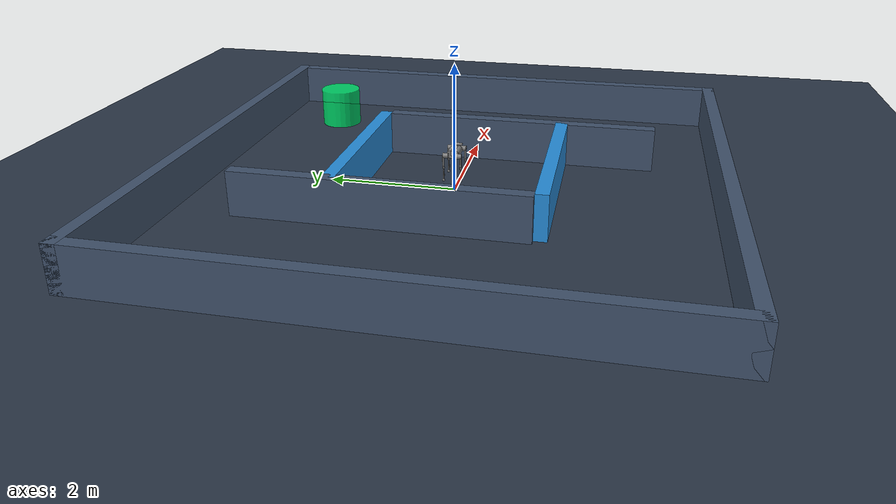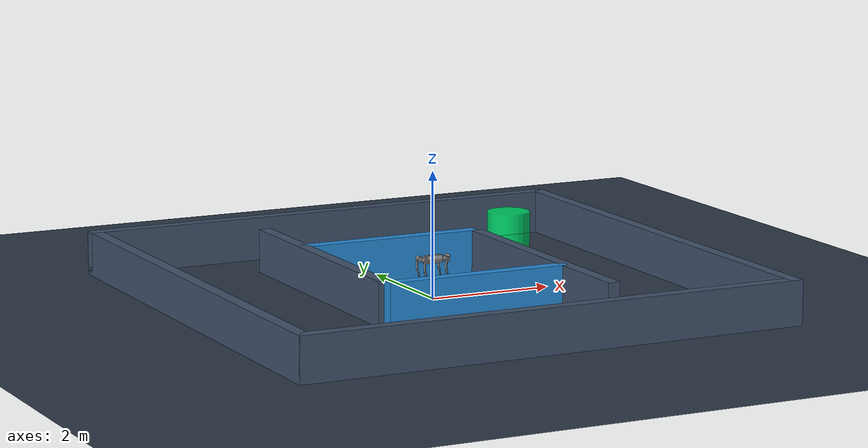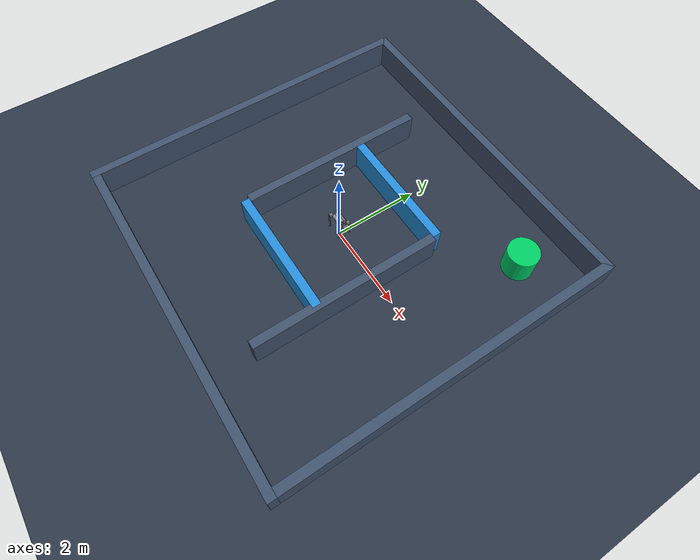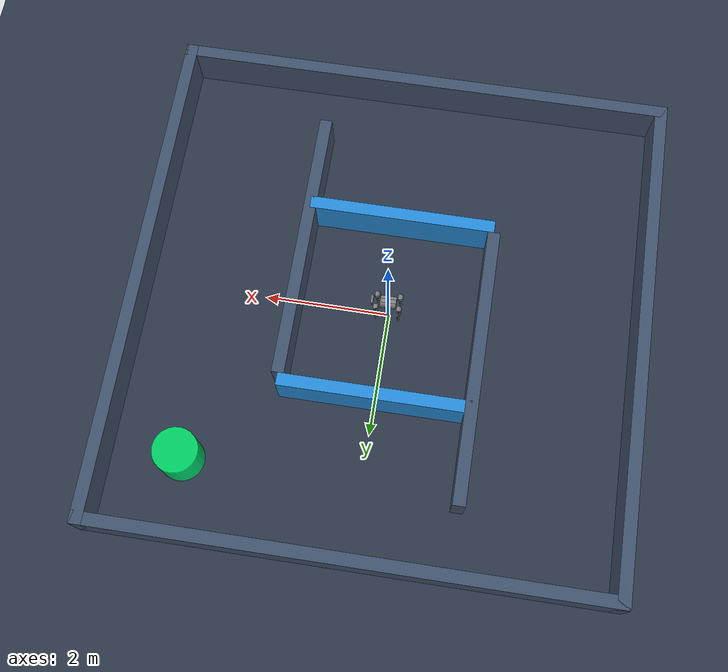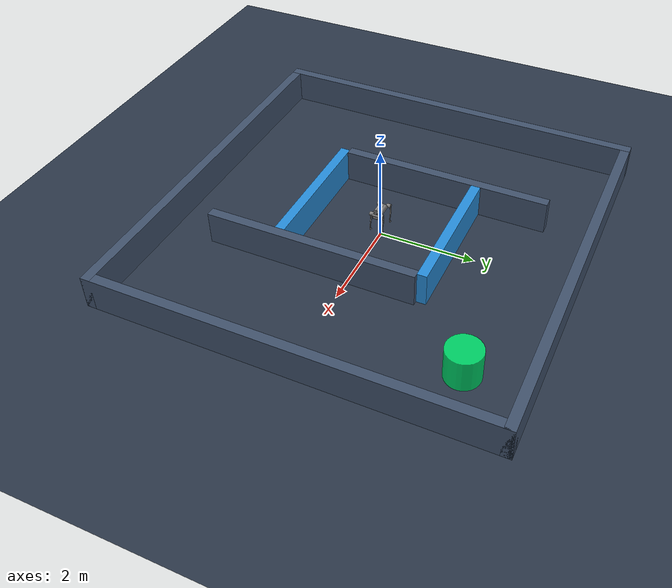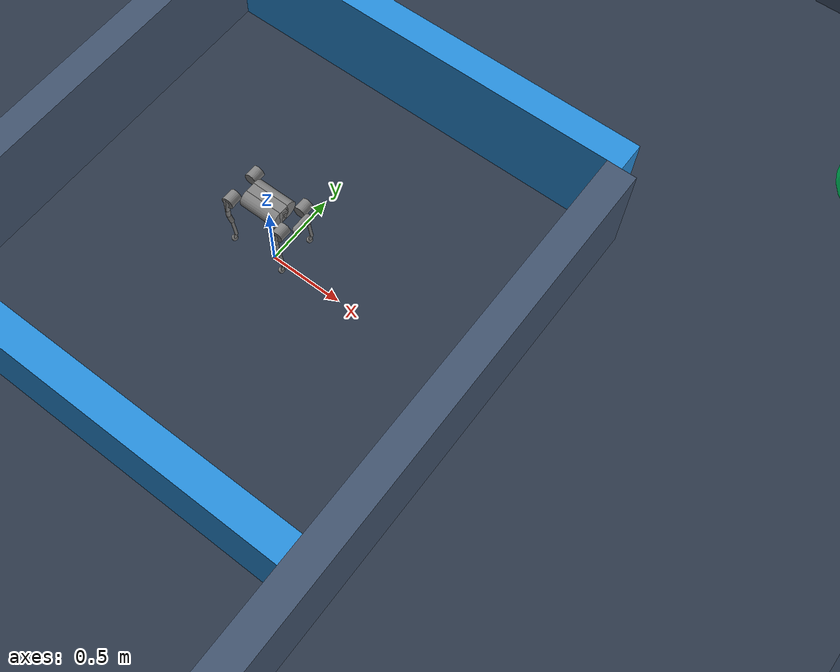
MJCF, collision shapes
<mujoco model="a1 complex maze scene">
  <include file="a1.xml"/>

  <visual>
    <headlight diffuse="0.85 0.85 0.85" ambient="0.35 0.35 0.35" specular="0.2 0.2 0.2"/>
    <rgba haze="0.10 0.18 0.28 1"/>
    <global azimuth="140" elevation="-32" offwidth="1280" offheight="720"/>
  </visual>

  <asset>
    <texture type="skybox" builtin="gradient" rgb1="0.25 0.45 0.65" rgb2="0.05 0.08 0.12" width="512" height="3072"/>
    <texture type="2d" name="groundplane" builtin="checker" mark="edge" rgb1="0.20 0.25 0.32" rgb2="0.14 0.18 0.24"
      markrgb="0.4 0.6 0.8" width="300" height="300"/>
    <material name="groundplane" texture="groundplane" texuniform="true" texrepeat="8 8" reflectance="0.15"/>

    <material name="wall_mat" rgba="0.25 0.32 0.42 1.0" specular="0.2" shininess="0.3"/>
    <material name="wall_accent" rgba="0.15 0.55 0.85 1.0" specular="0.4" shininess="0.5"/>
    <material name="goal_mat" rgba="0.0 0.95 0.45 0.85" specular="0.6" shininess="0.8"/>
  </asset>

  <worldbody>
    <light pos="0 0 5.0" dir="0 0 -1" directional="true" diffuse="0.9 0.9 0.9" specular="0.2 0.2 0.2"/>
    <light pos="-2.5 -2.5 4.0" dir="1 1 -1" directional="false" diffuse="0.5 0.5 0.6"/>
    <light pos="2.5 2.5 4.0" dir="-1 -1 -1" directional="false" diffuse="0.5 0.5 0.6"/>

    <!-- Clear, Elevated 3D Isometric Follow Camera (High above walls to prevent occlusion) -->
    <camera name="follow_cam" mode="trackcom" pos="-1.5 -1.5 2.5" xyaxes="0.707 -0.707 0 0.408 0.408 0.816"/>
    <!-- Top-Down Overview Map Camera -->
    <camera name="overview_cam" pos="0 0 9.0" xyaxes="1 0 0 0 1 0"/>

    <geom name="floor" size="0 0 0.05" type="plane" material="groundplane"/>

    <!-- Complex Hard Labyrinth Bounding Box (8m x 8m) -->
    <!-- North Wall -->
    <geom name="wall_n" type="box" pos="0 4.0 0.35" size="4.1 0.1 0.35" material="wall_mat"/>
    <!-- South Wall -->
    <geom name="wall_s" type="box" pos="0 -4.0 0.35" size="4.1 0.1 0.35" material="wall_mat"/>
    <!-- East Wall -->
    <geom name="wall_e" type="box" pos="4.0 0 0.35" size="0.1 4.1 0.35" material="wall_mat"/>
    <!-- West Wall -->
    <geom name="wall_w" type="box" pos="-4.0 0 0.35" size="0.1 4.1 0.35" material="wall_mat"/>

    <!-- Complex Hard Multi-Room Inner Dividers & U-Turn Chokepoints -->
    <!-- Divider 1: Left Corridor Divider -->
    <geom name="wall_div_1" type="box" pos="-1.5 0.8 0.35" size="0.1 2.2 0.35" material="wall_mat"/>
    <!-- Divider 2: Right Corridor Divider -->
    <geom name="wall_div_2" type="box" pos="1.5 -0.8 0.35" size="0.1 2.2 0.35" material="wall_mat"/>
    <!-- Divider 3: Bottom Horizontal Baffle (Chokepoint) -->
    <geom name="wall_div_3" type="box" pos="0.0 -1.5 0.35" size="1.5 0.1 0.35" material="wall_accent"/>
    <!-- Divider 4: Top Horizontal Baffle (Chokepoint) -->
    <geom name="wall_div_4" type="box" pos="0.0 1.5 0.35" size="1.5 0.1 0.35" material="wall_accent"/>

    <!-- Goal Beacon Marker -->
    <site name="goal_site" pos="2.8 2.8 0.3" size="0.35 0.35" type="cylinder" material="goal_mat"/>
  </worldbody>
</mujoco>

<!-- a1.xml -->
<mujoco model="a1">
  <compiler angle="radian" meshdir="assets" texturedir="assets" autolimits="true"/>

  <option cone="elliptic" impratio="100"/>

  <default>
    <default class="a1">
      <geom friction="0.6" margin="0.001"/>
      <joint axis="0 1 0" damping="2" armature="0.01" frictionloss="0.2"/>
      <position kp="100" forcerange="-33.5 33.5"/>
      <default class="abduction">
        <joint axis="1 0 0" damping="1" range="-0.802851 0.802851"/>
        <position ctrlrange="-0.802851 0.802851"/>
      </default>
      <default class="hip">
        <joint range="-1.0472 4.18879"/>
        <position ctrlrange="-1.0472 4.18879"/>
      </default>
      <default class="knee">
        <joint range="-2.69653 -0.916298"/>
        <position ctrlrange="-2.69653 -0.916298"/>
      </default>
      <default class="visual">
        <geom type="mesh" contype="0" conaffinity="0" group="2" material="dark"/>
      </default>

      <default class="foot_visual">
        <geom type="sphere" size="0.025" rgba="1 0 0 0.8"
              contype="0" conaffinity="0"/>
      </default>

      <default class="collision">
        <geom group="3" type="capsule"/>
        <default class="hip_left">
          <geom size="0.04 0.04" quat="1 1 0 0" type="cylinder" pos="0 0.055 0"/>
        </default>
        <default class="hip_right">
          <geom size="0.04 0.04" quat="1 1 0 0" type="cylinder" pos="0 -0.055 0"/>
        </default>
        <default class="thigh1">
          <geom size="0.015" fromto="-0.02 0 0 -0.02 0 -0.16"/>
        </default>
        <default class="thigh2">
          <geom size="0.015" fromto="0 0 0 -0.02 0 -0.1"/>
        </default>
        <default class="thigh3">
          <geom size="0.015" fromto="-0.02 0 -0.16 0 0 -0.2"/>
        </default>
        <default class="calf1">
          <geom size="0.01" fromto="0 0 0 0.02 0 -0.13"/>
        </default>
        <default class="calf2">
          <geom size="0.01" fromto="0.02 0 -0.13 0 0 -0.2"/>
        </default>
        <default class="foot">
          <geom type="sphere" size="0.02" pos="0 0 -0.2" priority="1" solimp="0.015 1 0.02" condim="6"
            friction="0.8 0.02 0.01"/>
        </default>
      </default>
    </default>
  </default>

  <asset>
    <material name="dark" specular="0" shininess="0.25" rgba="0.2 0.2 0.2 1"/>
    <texture type="2d" name="trunk_A1" file="trunk_A1.png"/>
    <material name="carbonfibre" texture="trunk_A1" specular="0" shininess="0.25"/>

    <mesh class="a1" file="calf.obj"/>
    <mesh class="a1" file="hip.obj"/>
    <mesh class="a1" file="thigh.obj"/>
    <mesh class="a1" file="thigh_mirror.obj"/>
    <mesh class="a1" file="trunk.obj"/>
  </asset>

  <worldbody>
    <light name="spotlight" mode="targetbodycom" target="trunk" pos="0 -1 2"/>
    <body name="trunk" pos="0 0 0.63" childclass="a1">
      <freejoint/>
      <inertial mass="4.713" pos="0 0.0041 -0.0005"
        fullinertia="0.0158533 0.0377999 0.0456542 -3.66e-05 -6.11e-05 -2.75e-05"/>
      <geom class="visual" mesh="trunk" material="carbonfibre"/>
      <geom class="collision" size="0.125 0.04 0.057" type="box"/>
      <geom class="collision" quat="1 0 1 0" pos="0 -0.04 0" size="0.058 0.125" type="cylinder"/>
      <geom class="collision" quat="1 0 1 0" pos="0 +0.04 0" size="0.058 0.125" type="cylinder"/>
      <geom class="collision" pos="0.25 0 0" size="0.005 0.06 0.05" type="box"/>
      <geom class="collision" pos="0.25 0.06 -0.01" size="0.009 0.035"/>
      <geom class="collision" pos="0.25 -0.06 -0.01" size="0.009 0.035"/>
      <geom class="collision" pos="0.25 0 -0.05" size="0.005 0.06" quat="1 1 0 0"/>
      <geom class="collision" pos="0.255 0 0.0355" size="0.021 0.052" quat="1 1 0 0"/>
      <body name="FR_hip" pos="0.183 -0.047 0">
        <inertial mass="0.696" pos="-0.003311 -0.000635 3.1e-05" quat="0.507528 0.506268 0.491507 0.494499"
          diaginertia="0.000807752 0.00055293 0.000468983"/>
        <joint class="abduction" name="FR_hip_joint"/>
        <geom class="visual" mesh="hip" quat="0 1 0 0"/>
        <geom class="hip_right"/>
        <body name="FR_thigh" pos="0 -0.08505 0">
          <inertial mass="1.013" pos="-0.003237 0.022327 -0.027326" quat="0.999125 -0.00256393 -0.0409531 -0.00806091"
            diaginertia="0.00555739 0.00513936 0.00133944"/>
          <joint class="hip" name="FR_thigh_joint"/>
          <geom class="visual" mesh="thigh_mirror"/>
          <geom class="thigh1"/>
          <geom class="thigh2"/>
          <geom class="thigh3"/>
          <body name="FR_calf" pos="0 0 -0.2">
            <inertial mass="0.226" pos="0.00472659 0 -0.131975" quat="0.706886 0.017653 0.017653 0.706886"
              diaginertia="0.00340344 0.00339393 3.54834e-05"/>
            <joint class="knee" name="FR_calf_joint"/>
            <geom class="visual" mesh="calf"/>
            <geom name="FR_calf1" class="calf1"/>
            <geom name="FR_calf2" class="calf2"/>

            <body name="FR_foot" pos="0 0 0">
              <inertial mass="0.01" pos="0 0 0" diaginertia="1e-5 1e-5 1e-5"/>
              <geom name="FR_foot_geom" class="foot"/>

            </body>
          </body>
        </body>
      </body>
      <body name="FL_hip" pos="0.183 0.047 0">
        <inertial mass="0.696" pos="-0.003311 0.000635 3.1e-05" quat="0.494499 0.491507 0.506268 0.507528"
          diaginertia="0.000807752 0.00055293 0.000468983"/>
        <joint class="abduction" name="FL_hip_joint"/>
        <geom class="visual" mesh="hip"/>
        <geom class="hip_left"/>
        <geom class="collision" size="0.04 0.04" pos="0 0.055 0" quat="1 1 0 0" type="cylinder"/>
        <body name="FL_thigh" pos="0 0.08505 0">
          <inertial mass="1.013" pos="-0.003237 -0.022327 -0.027326" quat="0.999125 0.00256393 -0.0409531 0.00806091"
            diaginertia="0.00555739 0.00513936 0.00133944"/>
          <joint class="hip" name="FL_thigh_joint"/>
          <geom class="visual" mesh="thigh"/>
          <geom class="thigh1"/>
          <geom class="thigh2"/>
          <geom class="thigh3"/>
          <body name="FL_calf" pos="0 0 -0.2">
            <inertial mass="0.226" pos="0.00472659 0 -0.131975" quat="0.706886 0.017653 0.017653 0.706886"
              diaginertia="0.00340344 0.00339393 3.54834e-05"/>
            <joint class="knee" name="FL_calf_joint"/>
            <geom class="visual" mesh="calf"/>
            <geom name="FL_calf1" class="calf1"/>
            <geom name="FL_calf2" class="calf2"/>

            <body name="FL_foot" pos="0 0 0">
              <inertial mass="0.01" pos="0 0 0" diaginertia="1e-5 1e-5 1e-5"/>
              <geom name="FL_foot_geom" class="foot"/>

            </body>
          </body>
        </body>
      </body>
      <body name="RR_hip" pos="-0.183 -0.047 0">
        <inertial mass="0.696" pos="0.003311 -0.000635 3.1e-05" quat="0.491507 0.494499 0.507528 0.506268"
          diaginertia="0.000807752 0.00055293 0.000468983"/>
        <joint class="abduction" name="RR_hip_joint"/>
        <geom class="visual" quat="0 0 0 -1" mesh="hip"/>
        <geom class="hip_right"/>
        <body name="RR_thigh" pos="0 -0.08505 0">
          <inertial mass="1.013" pos="-0.003237 0.022327 -0.027326" quat="0.999125 -0.00256393 -0.0409531 -0.00806091"
            diaginertia="0.00555739 0.00513936 0.00133944"/>
          <joint class="hip" name="RR_thigh_joint"/>
          <geom class="visual" mesh="thigh_mirror"/>
          <geom class="thigh1"/>
          <geom class="thigh2"/>
          <geom class="thigh3"/>
          <body name="RR_calf" pos="0 0 -0.2">
            <inertial mass="0.226" pos="0.00472659 0 -0.131975" quat="0.706886 0.017653 0.017653 0.706886"
              diaginertia="0.00340344 0.00339393 3.54834e-05"/>
            <joint class="knee" name="RR_calf_joint"/>
            <geom class="visual" mesh="calf"/>
            <geom name="RR_calf1" class="calf1"/>
            <geom name="RR_calf2" class="calf2"/>

            <body name="RR_foot" pos="0 0 0">
              <inertial mass="0.01" pos="0 0 0" diaginertia="1e-5 1e-5 1e-5"/>
              <geom name="RR_foot_geom" class="foot"/>

            </body>
          </body>
        </body>
      </body>
      <body name="RL_hip" pos="-0.183 0.047 0">
        <inertial mass="0.696" pos="0.003311 0.000635 3.1e-05" quat="0.506268 0.507528 0.494499 0.491507"
          diaginertia="0.000807752 0.00055293 0.000468983"/>
        <joint class="abduction" name="RL_hip_joint"/>
        <geom class="visual" quat="0 0 1 0" mesh="hip"/>
        <geom class="hip_left"/>
        <body name="RL_thigh" pos="0 0.08505 0">
          <inertial mass="1.013" pos="-0.003237 -0.022327 -0.027326" quat="0.999125 0.00256393 -0.0409531 0.00806091"
            diaginertia="0.00555739 0.00513936 0.00133944"/>
          <joint class="hip" name="RL_thigh_joint"/>
          <geom class="visual" mesh="thigh"/>
          <geom class="thigh1"/>
          <geom class="thigh2"/>
          <geom class="thigh3"/>
          <body name="RL_calf" pos="0 0 -0.2">
            <inertial mass="0.226" pos="0.00472659 0 -0.131975" quat="0.706886 0.017653 0.017653 0.706886"
              diaginertia="0.00340344 0.00339393 3.54834e-05"/>
            <joint class="knee" name="RL_calf_joint"/>
            <geom class="visual" mesh="calf"/>
            <geom name="RL_calf1" class="calf1"/>
            <geom name="RL_calf2" class="calf2"/>

            <body name="RL_foot" pos="0 0 0">
              <inertial mass="0.01" pos="0 0 0" diaginertia="1e-5 1e-5 1e-5"/>
              <geom name="RL_foot_geom" class="foot"/>

            </body>

          </body>
        </body>
      </body>
    </body>
  </worldbody>

  <actuator>
    <position class="abduction" name="FR_hip" joint="FR_hip_joint"/>
    <position class="hip" name="FR_thigh" joint="FR_thigh_joint"/>
    <position class="knee" name="FR_calf" joint="FR_calf_joint"/>
    <position class="abduction" name="FL_hip" joint="FL_hip_joint"/>
    <position class="hip" name="FL_thigh" joint="FL_thigh_joint"/>
    <position class="knee" name="FL_calf" joint="FL_calf_joint"/>
    <position class="abduction" name="RR_hip" joint="RR_hip_joint"/>
    <position class="hip" name="RR_thigh" joint="RR_thigh_joint"/>
    <position class="knee" name="RR_calf" joint="RR_calf_joint"/>
    <position class="abduction" name="RL_hip" joint="RL_hip_joint"/>
    <position class="hip" name="RL_thigh" joint="RL_thigh_joint"/>
    <position class="knee" name="RL_calf" joint="RL_calf_joint"/>
  </actuator>

  <contact>
    <exclude body1="world" body2="FR_calf"/>
    <exclude body1="world" body2="FL_calf"/>
    <exclude body1="world" body2="RR_calf"/>
    <exclude body1="world" body2="RL_calf"/>
  </contact>

  <keyframe>
    <key name="home" qpos="0 0 0.27 1 0 0 0 0 0.9 -1.8 0 0.9 -1.8 0 0.9 -1.8 0 0.9 -1.8"
      ctrl="0 0.9 -1.8 0 0.9 -1.8 0 0.9 -1.8 0 0.9 -1.8"/>
  </keyframe>
</mujoco>
